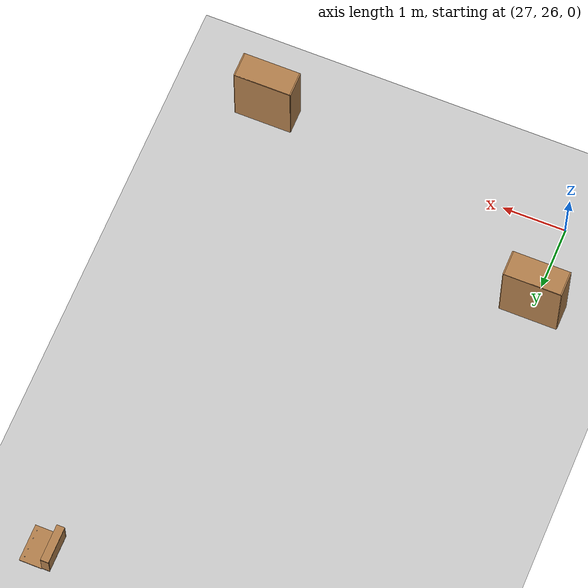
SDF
<sdf version="1.6">
 <world name="default">
  <model name="ground_plane">
   <static>1</static>
   <link name="link">
    <collision name="collision">
     <geometry><plane><normal>0 0 1</normal><size>100 100</size></plane></geometry>
     <surface><friction><ode><mu>100</mu><mu2>50</mu2></ode></friction></surface>
    </collision>
    <visual name="visual">
     <cast_shadows>0</cast_shadows>
     <geometry><plane><normal>0 0 1</normal><size>100 100</size></plane></geometry>
     <material>
      <script><uri>file://media/materials/scripts/gazebo.material</uri><name>Gazebo/Grey</name></script>
     </material>
    </visual>
   </link>
  </model>
  <model name="bookshelf_7">
   <static>1</static>
   <link name="link">
    <inertial><mass>1</mass></inertial>
    <collision name="back">
     <pose>0 0.005 0.6 0 -0 0</pose>
     <geometry><box><size>0.9 0.01 1.2</size></box></geometry>
    </collision>
    <visual name="visual1">
     <pose>0 0.005 0.6 0 -0 0</pose>
     <geometry><box><size>0.9 0.01 1.2</size></box></geometry>
     <material>
      <script><uri>file://media/materials/scripts/gazebo.material</uri><name>Gazebo/Wood</name></script>
     </material>
    </visual>
    <collision name="left_side">
     <pose>0.45 -0.195 0.6 0 -0 0</pose>
     <geometry><box><size>0.02 0.4 1.2</size></box></geometry>
    </collision>
    <visual name="visual2">
     <pose>0.45 -0.195 0.6 0 -0 0</pose>
     <geometry><box><size>0.02 0.4 1.2</size></box></geometry>
     <material>
      <script><uri>file://media/materials/scripts/gazebo.material</uri><name>Gazebo/Wood</name></script>
     </material>
    </visual>
    <collision name="right_side">
     <pose>-0.45 -0.195 0.6 0 -0 0</pose>
     <geometry><box><size>0.02 0.4 1.2</size></box></geometry>
    </collision>
    <visual name="visual3">
     <pose>-0.45 -0.195 0.6 0 -0 0</pose>
     <geometry><box><size>0.02 0.4 1.2</size></box></geometry>
     <material>
      <script><uri>file://media/materials/scripts/gazebo.material</uri><name>Gazebo/Wood</name></script>
     </material>
    </visual>
    <collision name="bottom">
     <pose>0 -0.195 0.03 0 -0 0</pose>
     <geometry><box><size>0.88 0.4 0.06</size></box></geometry>
    </collision>
    <visual name="visual4">
     <pose>0 -0.195 0.03 0 -0 0</pose>
     <geometry><box><size>0.88 0.4 0.06</size></box></geometry>
     <material>
      <script><uri>file://media/materials/scripts/gazebo.material</uri><name>Gazebo/Wood</name></script>
     </material>
    </visual>
    <collision name="top">
     <pose>0 -0.195 1.19 0 -0 0</pose>
     <geometry><box><size>0.88 0.4 0.02</size></box></geometry>
    </collision>
    <visual name="visual5">
     <pose>0 -0.195 1.19 0 -0 0</pose>
     <geometry><box><size>0.88 0.4 0.02</size></box></geometry>
     <material>
      <script><uri>file://media/materials/scripts/gazebo.material</uri><name>Gazebo/Wood</name></script>
     </material>
    </visual>
    <collision name="low_shelf">
     <pose>0 -0.195 0.43 0 -0 0</pose>
     <geometry><box><size>0.88 0.4 0.02</size></box></geometry>
    </collision>
    <visual name="visual6">
     <pose>0 -0.195 0.43 0 -0 0</pose>
     <geometry><box><size>0.88 0.4 0.02</size></box></geometry>
     <material>
      <script><uri>file://media/materials/scripts/gazebo.material</uri><name>Gazebo/Wood</name></script>
     </material>
    </visual>
    <collision name="high_shelf">
     <pose>0 -0.195 0.8 0 -0 0</pose>
     <geometry><box><size>0.88 0.4 0.02</size></box></geometry>
    </collision>
    <visual name="visual7">
     <pose>0 -0.195 0.8 0 -0 0</pose>
     <geometry><box><size>0.88 0.4 0.02</size></box></geometry>
     <material>
      <script><uri>file://media/materials/scripts/gazebo.material</uri><name>Gazebo/Wood</name></script>
     </material>
    </visual>
   </link>
   <pose>31.8937 26.0281 0 0 -0 0</pose>
  </model>
  <model name="bookshelf_8">
   <static>1</static>
   <link name="link">
    <inertial><mass>1</mass></inertial>
    <collision name="back">
     <pose>0 0.005 0.6 0 -0 0</pose>
     <geometry><box><size>0.9 0.01 1.2</size></box></geometry>
    </collision>
    <visual name="visual1">
     <pose>0 0.005 0.6 0 -0 0</pose>
     <geometry><box><size>0.9 0.01 1.2</size></box></geometry>
     <material>
      <script><uri>file://media/materials/scripts/gazebo.material</uri><name>Gazebo/Wood</name></script>
     </material>
    </visual>
    <collision name="left_side">
     <pose>0.45 -0.195 0.6 0 -0 0</pose>
     <geometry><box><size>0.02 0.4 1.2</size></box></geometry>
    </collision>
    <visual name="visual2">
     <pose>0.45 -0.195 0.6 0 -0 0</pose>
     <geometry><box><size>0.02 0.4 1.2</size></box></geometry>
     <material>
      <script><uri>file://media/materials/scripts/gazebo.material</uri><name>Gazebo/Wood</name></script>
     </material>
    </visual>
    <collision name="right_side">
     <pose>-0.45 -0.195 0.6 0 -0 0</pose>
     <geometry><box><size>0.02 0.4 1.2</size></box></geometry>
    </collision>
    <visual name="visual3">
     <pose>-0.45 -0.195 0.6 0 -0 0</pose>
     <geometry><box><size>0.02 0.4 1.2</size></box></geometry>
     <material>
      <script><uri>file://media/materials/scripts/gazebo.material</uri><name>Gazebo/Wood</name></script>
     </material>
    </visual>
    <collision name="bottom">
     <pose>0 -0.195 0.03 0 -0 0</pose>
     <geometry><box><size>0.88 0.4 0.06</size></box></geometry>
    </collision>
    <visual name="visual4">
     <pose>0 -0.195 0.03 0 -0 0</pose>
     <geometry><box><size>0.88 0.4 0.06</size></box></geometry>
     <material>
      <script><uri>file://media/materials/scripts/gazebo.material</uri><name>Gazebo/Wood</name></script>
     </material>
    </visual>
    <collision name="top">
     <pose>0 -0.195 1.19 0 -0 0</pose>
     <geometry><box><size>0.88 0.4 0.02</size></box></geometry>
    </collision>
    <visual name="visual5">
     <pose>0 -0.195 1.19 0 -0 0</pose>
     <geometry><box><size>0.88 0.4 0.02</size></box></geometry>
     <material>
      <script><uri>file://media/materials/scripts/gazebo.material</uri><name>Gazebo/Wood</name></script>
     </material>
    </visual>
    <collision name="low_shelf">
     <pose>0 -0.195 0.43 0 -0 0</pose>
     <geometry><box><size>0.88 0.4 0.02</size></box></geometry>
    </collision>
    <visual name="visual6">
     <pose>0 -0.195 0.43 0 -0 0</pose>
     <geometry><box><size>0.88 0.4 0.02</size></box></geometry>
     <material>
      <script><uri>file://media/materials/scripts/gazebo.material</uri><name>Gazebo/Wood</name></script>
     </material>
    </visual>
    <collision name="high_shelf">
     <pose>0 -0.195 0.8 0 -0 0</pose>
     <geometry><box><size>0.88 0.4 0.02</size></box></geometry>
    </collision>
    <visual name="visual7">
     <pose>0 -0.195 0.8 0 -0 0</pose>
     <geometry><box><size>0.88 0.4 0.02</size></box></geometry>
     <material>
      <script><uri>file://media/materials/scripts/gazebo.material</uri><name>Gazebo/Wood</name></script>
     </material>
    </visual>
   </link>
   <pose>27.0094 27.5541 0 0 -0 0</pose>
  </model>
  <model name="wooden_case">
   <link name="base">
    <pose>0 0 0.024 0 -0 0</pose>
    <inertial>
     <pose>-0.022184 0 0.171592 0 -0 0</pose>
     <mass>3.96264</mass>
     <inertia>
      <ixx>0.213536</ixx>
      <ixy>0</ixy>
      <ixz>0.000779377</ixz>
      <iyy>0.0708943</iyy>
      <iyz>0</iyz>
      <izz>0.154604</izz>
     </inertia>
    </inertial>
    <collision name="collision_back">
     <pose>-0.053975 0 0.1778 0 -0 0</pose>
     <geometry><box><size>0.01905 0.5461 0.3175</size></box></geometry>
     <surface>
      <contact>
       <poissons_ratio>0.347</poissons_ratio>
       <elastic_modulus>8.8e+09</elastic_modulus>
       <ode><kp>100000</kp><kd>100</kd><max_vel>100</max_vel><min_depth>0.001</min_depth></ode>
      </contact>
      <friction>
       <torsional>
        <coefficient>1</coefficient>
        <use_patch_radius>0</use_patch_radius>
        <surface_radius>0.01</surface_radius>
       </torsional>
      </friction>
     </surface>
    </collision>
    <visual name="visual_back">
     <pose>-0.053975 0 0.1778 0 -0 0</pose>
     <geometry><box><size>0.01905 0.5461 0.3175</size></box></geometry>
     <material>
      <script><uri>file://media/materials/scripts/gazebo.material</uri><name>Gazebo/Wood</name></script>
     </material>
    </visual>
    <collision name="collision_bottom">
     <pose>0 0 0.009525 0 -0 0</pose>
     <geometry><box><size>0.127 0.5842 0.01905</size></box></geometry>
     <surface>
      <contact>
       <poissons_ratio>0.347</poissons_ratio>
       <elastic_modulus>8.8e+09</elastic_modulus>
       <ode><kp>100000</kp><kd>100</kd><max_vel>100</max_vel><min_depth>0.001</min_depth></ode>
      </contact>
      <friction>
       <torsional>
        <coefficient>1</coefficient>
        <use_patch_radius>0</use_patch_radius>
        <surface_radius>0.01</surface_radius>
       </torsional>
      </friction>
     </surface>
    </collision>
    <visual name="visual_bottom">
     <pose>0 0 0.009525 0 -0 0</pose>
     <geometry><box><size>0.127 0.5842 0.01905</size></box></geometry>
     <material>
      <script><uri>file://media/materials/scripts/gazebo.material</uri><name>Gazebo/Wood</name></script>
     </material>
    </visual>
    <collision name="collision_top">
     <pose>0 0 0.346075 0 -0 0</pose>
     <geometry><box><size>0.127 0.5842 0.01905</size></box></geometry>
     <surface>
      <contact>
       <poissons_ratio>0.347</poissons_ratio>
       <elastic_modulus>8.8e+09</elastic_modulus>
       <ode><kp>100000</kp><kd>100</kd><max_vel>100</max_vel><min_depth>0.001</min_depth></ode>
      </contact>
      <friction>
       <torsional>
        <coefficient>1</coefficient>
        <use_patch_radius>0</use_patch_radius>
        <surface_radius>0.01</surface_radius>
       </torsional>
      </friction>
     </surface>
    </collision>
    <visual name="visual_top">
     <pose>0 0 0.346075 0 -0 0</pose>
     <geometry><box><size>0.127 0.5842 0.01905</size></box></geometry>
     <material>
      <script><uri>file://media/materials/scripts/gazebo.material</uri><name>Gazebo/Wood</name></script>
     </material>
    </visual>
    <collision name="collision_left">
     <pose>0 -0.282575 0.1778 0 -0 0</pose>
     <geometry><box><size>0.127 0.01905 0.3175</size></box></geometry>
     <surface>
      <contact>
       <poissons_ratio>0.347</poissons_ratio>
       <elastic_modulus>8.8e+09</elastic_modulus>
       <ode><kp>100000</kp><kd>100</kd><max_vel>100</max_vel><min_depth>0.001</min_depth></ode>
      </contact>
      <friction>
       <torsional>
        <coefficient>1</coefficient>
        <use_patch_radius>0</use_patch_radius>
        <surface_radius>0.01</surface_radius>
       </torsional>
      </friction>
     </surface>
    </collision>
    <visual name="visual_left">
     <pose>0 -0.282575 0.1778 0 -0 0</pose>
     <geometry><box><size>0.127 0.01905 0.3175</size></box></geometry>
     <material>
      <script><uri>file://media/materials/scripts/gazebo.material</uri><name>Gazebo/Wood</name></script>
     </material>
    </visual>
    <collision name="collision_right">
     <pose>0 0.282575 0.1778 0 -0 0</pose>
     <geometry><box><size>0.127 0.01905 0.3175</size></box></geometry>
     <surface>
      <contact>
       <poissons_ratio>0.347</poissons_ratio>
       <elastic_modulus>8.8e+09</elastic_modulus>
       <ode><kp>100000</kp><kd>100</kd><max_vel>100</max_vel><min_depth>0.001</min_depth></ode>
      </contact>
      <friction>
       <torsional>
        <coefficient>1</coefficient>
        <use_patch_radius>0</use_patch_radius>
        <surface_radius>0.01</surface_radius>
       </torsional>
      </friction>
     </surface>
    </collision>
    <visual name="visual_right">
     <pose>0 0.282575 0.1778 0 -0 0</pose>
     <geometry><box><size>0.127 0.01905 0.3175</size></box></geometry>
     <material>
      <script><uri>file://media/materials/scripts/gazebo.material</uri><name>Gazebo/Wood</name></script>
     </material>
    </visual>
    <collision name="collision_block_left">
     <pose>0.0095 -0.2151 -0.012 0 -0 0</pose>
     <geometry><box><size>0.108 0.05 0.024</size></box></geometry>
     <surface>
      <contact>
       <poissons_ratio>0.347</poissons_ratio>
       <elastic_modulus>8.8e+09</elastic_modulus>
       <ode><kp>100000</kp><kd>100</kd><max_vel>100</max_vel><min_depth>0.001</min_depth></ode>
      </contact>
      <friction>
       <torsional>
        <coefficient>1</coefficient>
        <use_patch_radius>0</use_patch_radius>
        <surface_radius>0.01</surface_radius>
       </torsional>
      </friction>
     </surface>
    </collision>
    <visual name="visual_block_left">
     <pose>0.0095 -0.2151 -0.012 0 -0 0</pose>
     <geometry><box><size>0.108 0.05 0.024</size></box></geometry>
     <material>
      <script><uri>file://media/materials/scripts/gazebo.material</uri><name>Gazebo/Wood</name></script>
     </material>
    </visual>
    <collision name="collision_block_right">
     <pose>0.0095 0.2151 -0.012 0 -0 0</pose>
     <geometry><box><size>0.108 0.05 0.024</size></box></geometry>
     <surface>
      <contact>
       <poissons_ratio>0.347</poissons_ratio>
       <elastic_modulus>8.8e+09</elastic_modulus>
       <ode><kp>100000</kp><kd>100</kd><max_vel>100</max_vel><min_depth>0.001</min_depth></ode>
      </contact>
      <friction>
       <torsional>
        <coefficient>1</coefficient>
        <use_patch_radius>0</use_patch_radius>
        <surface_radius>0.01</surface_radius>
       </torsional>
      </friction>
     </surface>
    </collision>
    <visual name="visual_block_right">
     <pose>0.0095 0.2151 -0.012 0 -0 0</pose>
     <geometry><box><size>0.108 0.05 0.024</size></box></geometry>
     <material>
      <script><uri>file://media/materials/scripts/gazebo.material</uri><name>Gazebo/Wood</name></script>
     </material>
    </visual>
   </link>
   <link name="lid">
    <pose>0.243775 0 0.009525 0 -0 0</pose>
    <inertial>
     <mass>1.97874</mass>
     <inertia>
      <ixx>0.0563367</ixx>
      <ixy>0</ixy>
      <ixz>0</ixz>
      <iyy>0.020911</iyy>
      <iyz>0</iyz>
      <izz>0.0771281</izz>
     </inertia>
    </inertial>
    <collision name="collision">
     <geometry><box><size>0.3556 0.5842 0.01905</size></box></geometry>
     <surface>
      <contact>
       <poissons_ratio>0.347</poissons_ratio>
       <elastic_modulus>8.8e+09</elastic_modulus>
       <ode><kp>100000</kp><kd>100</kd><max_vel>100</max_vel><min_depth>0.001</min_depth></ode>
      </contact>
      <friction>
       <torsional>
        <coefficient>1</coefficient>
        <use_patch_radius>0</use_patch_radius>
        <surface_radius>0.01</surface_radius>
       </torsional>
      </friction>
     </surface>
    </collision>
    <visual name="visual">
     <geometry><box><size>0.3556 0.5842 0.01905</size></box></geometry>
     <material>
      <script><uri>file://media/materials/scripts/gazebo.material</uri><name>Gazebo/Wood</name></script>
     </material>
    </visual>
    <visual name="tee_nut_1">
     <pose>0.122 -0.216 0 0 -0 0</pose>
     <geometry><cylinder><radius>0.00635</radius><length>0.0192405</length></cylinder></geometry>
     <material>
      <script><uri>file://media/materials/scripts/gazebo.material</uri><name>Gazebo/Grey</name></script>
     </material>
    </visual>
    <visual name="tee_nut_2">
     <pose>0.122 -0.088 0 0 -0 0</pose>
     <geometry><cylinder><radius>0.00635</radius><length>0.0192405</length></cylinder></geometry>
     <material>
      <script><uri>file://media/materials/scripts/gazebo.material</uri><name>Gazebo/Grey</name></script>
     </material>
    </visual>
    <visual name="tee_nut_3">
     <pose>0.122 0.088 0 0 -0 0</pose>
     <geometry><cylinder><radius>0.00635</radius><length>0.0192405</length></cylinder></geometry>
     <material>
      <script><uri>file://media/materials/scripts/gazebo.material</uri><name>Gazebo/Grey</name></script>
     </material>
    </visual>
    <visual name="tee_nut_4">
     <pose>0.122 0.216 0 0 -0 0</pose>
     <geometry><cylinder><radius>0.00635</radius><length>0.0192405</length></cylinder></geometry>
     <material>
      <script><uri>file://media/materials/scripts/gazebo.material</uri><name>Gazebo/Grey</name></script>
     </material>
    </visual>
   </link>
   <joint name="lid_hinge" type="revolute">
    <pose>-0.1778 0 0.01905 0 -0 0</pose>
    <parent>base</parent>
    <child>lid</child>
    <axis>
     <xyz>0 1 0</xyz>
     <limit><upper>0.523599</upper><lower>-1.5708</lower></limit>
     <use_parent_model_frame>0</use_parent_model_frame>
     <dynamics><spring_reference>0</spring_reference><spring_stiffness>0</spring_stiffness></dynamics>
    </axis>
   </joint>
   <pose>32 33.6154 -0.001057 0 -0.00043 0</pose>
  </model>
 </world>
</sdf>
